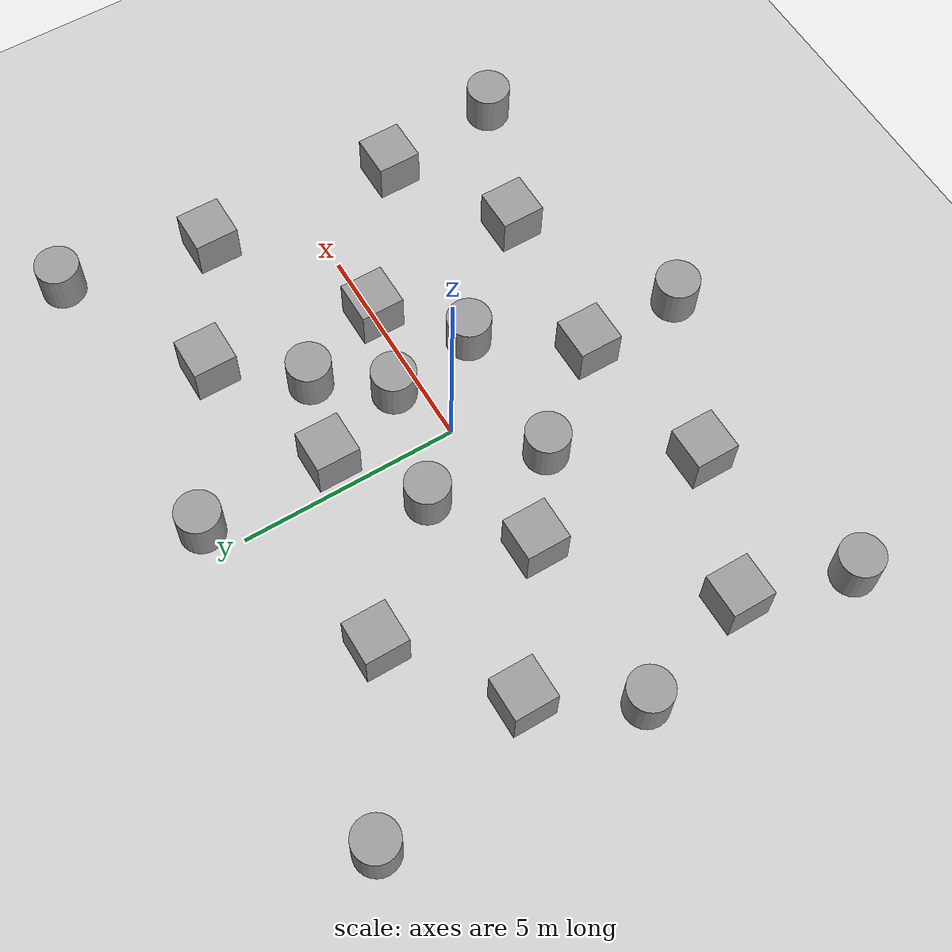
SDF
<sdf version='1.7'>
  <world name='default'>
    <model name='ground_plane'>
      <static>1</static>
      <link name='link'>
        <collision name='collision'>
          <geometry>
            <plane>
              <normal>0 0 1</normal>
              <size>100 100</size>
            </plane>
          </geometry>
          <surface>
            <friction>
              <ode>
                <mu>100</mu>
                <mu2>50</mu2>
              </ode>
              <torsional>
                <ode/>
              </torsional>
            </friction>
            <contact>
              <ode/>
            </contact>
            <bounce/>
          </surface>
          <max_contacts>10</max_contacts>
        </collision>
        <visual name='visual'>
          <cast_shadows>0</cast_shadows>
          <geometry>
            <plane>
              <normal>0 0 1</normal>
              <size>100 100</size>
            </plane>
          </geometry>
          <material>
            <script>
              <uri>file://media/materials/scripts/gazebo.material</uri>
              <name>Gazebo/Grey</name>
            </script>
          </material>
        </visual>
        <self_collide>0</self_collide>
        <enable_wind>0</enable_wind>
        <kinematic>0</kinematic>
      </link>
    </model>
    <light name='sun' type='directional'>
      <cast_shadows>1</cast_shadows>
      <pose>0 0 10 0 -0 0</pose>
      <diffuse>0.8 0.8 0.8 1</diffuse>
      <specular>0.2 0.2 0.2 1</specular>
      <attenuation>
        <range>1000</range>
        <constant>0.9</constant>
        <linear>0.01</linear>
        <quadratic>0.001</quadratic>
      </attenuation>
      <direction>-0.5 0.1 -0.9</direction>
      <spot>
        <inner_angle>0</inner_angle>
        <outer_angle>0</outer_angle>
        <falloff>0</falloff>
      </spot>
    </light>
    <light name='user_point_light_0' type='point'>
      <pose>-0.01172 -0.065236 1 0 -0 0</pose>
      <diffuse>0.5 0.5 0.5 1</diffuse>
      <specular>0.1 0.1 0.1 1</specular>
      <attenuation>
        <range>20</range>
        <constant>0.5</constant>
        <linear>0.01</linear>
        <quadratic>0.001</quadratic>
      </attenuation>
      <cast_shadows>0</cast_shadows>
      <direction>0 0 -1</direction>
      <spot>
        <inner_angle>0</inner_angle>
        <outer_angle>0</outer_angle>
        <falloff>0</falloff>
      </spot>
    </light>
    <scene>
      <shadows>0</shadows>
      <ambient>0.4 0.4 0.4 1</ambient>
      <background>0.7 0.7 0.7 1</background>
    </scene>
    <gui fullscreen='0'>
      <camera name='user_camera'>
        <pose>-0.028607 -0.12935 6.91542 0 1.5138 0.009599</pose>
        <view_controller>orbit</view_controller>
        <projection_type>perspective</projection_type>
      </camera>
    </gui>
    <physics type='ode'>
      <real_time_update_rate>1000</real_time_update_rate>
      <max_step_size>0.001</max_step_size>
      <real_time_factor>1</real_time_factor>
      <ode>
        <solver>
          <type>quick</type>
          <iters>150</iters>
          <precon_iters>0</precon_iters>
          <sor>1.4</sor>
          <use_dynamic_moi_rescaling>1</use_dynamic_moi_rescaling>
        </solver>
        <constraints>
          <cfm>1e-05</cfm>
          <erp>0.2</erp>
          <contact_max_correcting_vel>2000</contact_max_correcting_vel>
          <contact_surface_layer>0.01</contact_surface_layer>
        </constraints>
      </ode>
    </physics>
    <gravity>0 0 -9.8</gravity>
    <magnetic_field>6e-06 2.3e-05 -4.2e-05</magnetic_field>
    <atmosphere type='adiabatic'/>
    <audio>
      <device>default</device>
    </audio>
    <wind/>
    <spherical_coordinates>
      <surface_model>EARTH_WGS84</surface_model>
      <latitude_deg>0</latitude_deg>
      <longitude_deg>0</longitude_deg>
      <elevation>0</elevation>
      <heading_deg>0</heading_deg>
    </spherical_coordinates>
    <model name='unit_box'>
      <static>1</static>
      <pose>3.38666 0.001849 0.5 0 -0 0</pose>
      <link name='link'>
        <collision name='collision'>
          <geometry>
            <box>
              <size>1 1 1</size>
            </box>
          </geometry>
          <max_contacts>10</max_contacts>
          <surface>
            <contact>
              <ode/>
            </contact>
            <bounce/>
            <friction>
              <torsional>
                <ode/>
              </torsional>
              <ode/>
            </friction>
          </surface>
        </collision>
        <visual name='visual'>
          <geometry>
            <box>
              <size>1 1 1</size>
            </box>
          </geometry>
          <material>
            <script>
              <name>Gazebo/Grey</name>
              <uri>file://media/materials/scripts/gazebo.material</uri>
            </script>
          </material>
        </visual>
        <self_collide>0</self_collide>
        <enable_wind>0</enable_wind>
        <kinematic>0</kinematic>
      </link>
    </model>
    <model name='unit_box_0'>
      <static>1</static>
      <pose>0.67697 2.60322 0.5 0 -0 0</pose>
      <link name='link'>
        <collision name='collision'>
          <geometry>
            <box>
              <size>1 1 1</size>
            </box>
          </geometry>
          <max_contacts>10</max_contacts>
          <surface>
            <contact>
              <ode/>
            </contact>
            <bounce/>
            <friction>
              <torsional>
                <ode/>
              </torsional>
              <ode/>
            </friction>
          </surface>
        </collision>
        <visual name='visual'>
          <geometry>
            <box>
              <size>1 1 1</size>
            </box>
          </geometry>
          <material>
            <script>
              <name>Gazebo/Grey</name>
              <uri>file://media/materials/scripts/gazebo.material</uri>
            </script>
          </material>
        </visual>
        <self_collide>0</self_collide>
        <enable_wind>0</enable_wind>
        <kinematic>0</kinematic>
      </link>
    </model>
    <model name='unit_box_1'>
      <static>1</static>
      <pose>-3.22361 -0.084555 0.5 0 -0 0</pose>
      <link name='link'>
        <collision name='collision'>
          <geometry>
            <box>
              <size>1 1 1</size>
            </box>
          </geometry>
          <max_contacts>10</max_contacts>
          <surface>
            <contact>
              <ode/>
            </contact>
            <bounce/>
            <friction>
              <torsional>
                <ode/>
              </torsional>
              <ode/>
            </friction>
          </surface>
        </collision>
        <visual name='visual'>
          <geometry>
            <box>
              <size>1 1 1</size>
            </box>
          </geometry>
          <material>
            <script>
              <name>Gazebo/Grey</name>
              <uri>file://media/materials/scripts/gazebo.material</uri>
            </script>
          </material>
        </visual>
        <self_collide>0</self_collide>
        <enable_wind>0</enable_wind>
        <kinematic>0</kinematic>
      </link>
    </model>
    <model name='unit_box_2'>
      <static>1</static>
      <pose>0.190268 -3.57976 0.5 0 -0 0</pose>
      <link name='link'>
        <collision name='collision'>
          <geometry>
            <box>
              <size>1 1 1</size>
            </box>
          </geometry>
          <max_contacts>10</max_contacts>
          <surface>
            <contact>
              <ode/>
            </contact>
            <bounce/>
            <friction>
              <torsional>
                <ode/>
              </torsional>
              <ode/>
            </friction>
          </surface>
        </collision>
        <visual name='visual'>
          <geometry>
            <box>
              <size>1 1 1</size>
            </box>
          </geometry>
          <material>
            <script>
              <name>Gazebo/Grey</name>
              <uri>file://media/materials/scripts/gazebo.material</uri>
            </script>
          </material>
        </visual>
        <self_collide>0</self_collide>
        <enable_wind>0</enable_wind>
        <kinematic>0</kinematic>
      </link>
    </model>
    <model name='unit_box_3'>
      <static>1</static>
      <pose>3.96673 3.78324 0.5 0 -0 0</pose>
      <link name='link'>
        <collision name='collision'>
          <geometry>
            <box>
              <size>1 1 1</size>
            </box>
          </geometry>
          <max_contacts>10</max_contacts>
          <surface>
            <contact>
              <ode/>
            </contact>
            <bounce/>
            <friction>
              <torsional>
                <ode/>
              </torsional>
              <ode/>
            </friction>
          </surface>
        </collision>
        <visual name='visual'>
          <geometry>
            <box>
              <size>1 1 1</size>
            </box>
          </geometry>
          <material>
            <script>
              <name>Gazebo/Grey</name>
              <uri>file://media/materials/scripts/gazebo.material</uri>
            </script>
          </material>
        </visual>
        <self_collide>0</self_collide>
        <enable_wind>0</enable_wind>
        <kinematic>0</kinematic>
      </link>
    </model>
    <model name='unit_box_4'>
      <static>1</static>
      <pose>3.90566 -3.92218 0.5 0 -0 0</pose>
      <link name='link'>
        <collision name='collision'>
          <geometry>
            <box>
              <size>1 1 1</size>
            </box>
          </geometry>
          <max_contacts>10</max_contacts>
          <surface>
            <contact>
              <ode/>
            </contact>
            <bounce/>
            <friction>
              <torsional>
                <ode/>
              </torsional>
              <ode/>
            </friction>
          </surface>
        </collision>
        <visual name='visual'>
          <geometry>
            <box>
              <size>1 1 1</size>
            </box>
          </geometry>
          <material>
            <script>
              <name>Gazebo/Grey</name>
              <uri>file://media/materials/scripts/gazebo.material</uri>
            </script>
          </material>
        </visual>
        <self_collide>0</self_collide>
        <enable_wind>0</enable_wind>
        <kinematic>0</kinematic>
      </link>
    </model>
    <model name='unit_box_5'>
      <static>1</static>
      <pose>-3.49931 3.82197 0.5 0 -0 0</pose>
      <link name='link'>
        <collision name='collision'>
          <geometry>
            <box>
              <size>1 1 1</size>
            </box>
          </geometry>
          <max_contacts>10</max_contacts>
          <surface>
            <contact>
              <ode/>
            </contact>
            <bounce/>
            <friction>
              <torsional>
                <ode/>
              </torsional>
              <ode/>
            </friction>
          </surface>
        </collision>
        <visual name='visual'>
          <geometry>
            <box>
              <size>1 1 1</size>
            </box>
          </geometry>
          <material>
            <script>
              <name>Gazebo/Grey</name>
              <uri>file://media/materials/scripts/gazebo.material</uri>
            </script>
          </material>
        </visual>
        <self_collide>0</self_collide>
        <enable_wind>0</enable_wind>
        <kinematic>0</kinematic>
      </link>
    </model>
    <model name='unit_box_6'>
      <static>1</static>
      <pose>-3.26445 -4.20284 0.5 0 -0 0</pose>
      <link name='link'>
        <collision name='collision'>
          <geometry>
            <box>
              <size>1 1 1</size>
            </box>
          </geometry>
          <max_contacts>10</max_contacts>
          <surface>
            <contact>
              <ode/>
            </contact>
            <bounce/>
            <friction>
              <torsional>
                <ode/>
              </torsional>
              <ode/>
            </friction>
          </surface>
        </collision>
        <visual name='visual'>
          <geometry>
            <box>
              <size>1 1 1</size>
            </box>
          </geometry>
          <material>
            <script>
              <name>Gazebo/Grey</name>
              <uri>file://media/materials/scripts/gazebo.material</uri>
            </script>
          </material>
        </visual>
        <self_collide>0</self_collide>
        <enable_wind>0</enable_wind>
        <kinematic>0</kinematic>
      </link>
    </model>
    <model name='unit_box_7'>
      <static>1</static>
      <pose>6.63246 -2.28389 0.5 0 -0 0</pose>
      <link name='link'>
        <collision name='collision'>
          <geometry>
            <box>
              <size>1 1 1</size>
            </box>
          </geometry>
          <max_contacts>10</max_contacts>
          <surface>
            <contact>
              <ode/>
            </contact>
            <bounce/>
            <friction>
              <torsional>
                <ode/>
              </torsional>
              <ode/>
            </friction>
          </surface>
        </collision>
        <visual name='visual'>
          <geometry>
            <box>
              <size>1 1 1</size>
            </box>
          </geometry>
          <material>
            <script>
              <name>Gazebo/Grey</name>
              <uri>file://media/materials/scripts/gazebo.material</uri>
            </script>
          </material>
        </visual>
        <self_collide>0</self_collide>
        <enable_wind>0</enable_wind>
        <kinematic>0</kinematic>
      </link>
    </model>
    <model name='unit_box_8'>
      <static>1</static>
      <pose>6.87415 2.26288 0.5 0 -0 0</pose>
      <link name='link'>
        <collision name='collision'>
          <geometry>
            <box>
              <size>1 1 1</size>
            </box>
          </geometry>
          <max_contacts>10</max_contacts>
          <surface>
            <contact>
              <ode/>
            </contact>
            <bounce/>
            <friction>
              <torsional>
                <ode/>
              </torsional>
              <ode/>
            </friction>
          </surface>
        </collision>
        <visual name='visual'>
          <geometry>
            <box>
              <size>1 1 1</size>
            </box>
          </geometry>
          <material>
            <script>
              <name>Gazebo/Grey</name>
              <uri>file://media/materials/scripts/gazebo.material</uri>
            </script>
          </material>
        </visual>
        <self_collide>0</self_collide>
        <enable_wind>0</enable_wind>
        <kinematic>0</kinematic>
      </link>
    </model>
    <model name='unit_box_9'>
      <static>1</static>
      <pose>-5.95784 1.92108 0.5 0 -0 0</pose>
      <link name='link'>
        <collision name='collision'>
          <geometry>
            <box>
              <size>1 1 1</size>
            </box>
          </geometry>
          <max_contacts>10</max_contacts>
          <surface>
            <contact>
              <ode/>
            </contact>
            <bounce/>
            <friction>
              <torsional>
                <ode/>
              </torsional>
              <ode/>
            </friction>
          </surface>
        </collision>
        <visual name='visual'>
          <geometry>
            <box>
              <size>1 1 1</size>
            </box>
          </geometry>
          <material>
            <script>
              <name>Gazebo/Grey</name>
              <uri>file://media/materials/scripts/gazebo.material</uri>
            </script>
          </material>
        </visual>
        <self_collide>0</self_collide>
        <enable_wind>0</enable_wind>
        <kinematic>0</kinematic>
      </link>
    </model>
    <model name='unit_box_10'>
      <static>1</static>
      <pose>-6.34165 -2.92589 0.5 0 -0 0</pose>
      <link name='link'>
        <collision name='collision'>
          <geometry>
            <box>
              <size>1 1 1</size>
            </box>
          </geometry>
          <max_contacts>10</max_contacts>
          <surface>
            <contact>
              <ode/>
            </contact>
            <bounce/>
            <friction>
              <torsional>
                <ode/>
              </torsional>
              <ode/>
            </friction>
          </surface>
        </collision>
        <visual name='visual'>
          <geometry>
            <box>
              <size>1 1 1</size>
            </box>
          </geometry>
          <material>
            <script>
              <name>Gazebo/Grey</name>
              <uri>file://media/materials/scripts/gazebo.material</uri>
            </script>
          </material>
        </visual>
        <self_collide>0</self_collide>
        <enable_wind>0</enable_wind>
        <kinematic>0</kinematic>
      </link>
    </model>
    <model name='unit_cylinder'>
      <static>1</static>
      <pose>6.98704 -5.17615 0.5 0 -0 0</pose>
      <link name='link'>
        <collision name='collision'>
          <geometry>
            <cylinder>
              <radius>0.5</radius>
              <length>1</length>
            </cylinder>
          </geometry>
          <max_contacts>10</max_contacts>
          <surface>
            <contact>
              <ode/>
            </contact>
            <bounce/>
            <friction>
              <torsional>
                <ode/>
              </torsional>
              <ode/>
            </friction>
          </surface>
        </collision>
        <visual name='visual'>
          <geometry>
            <cylinder>
              <radius>0.5</radius>
              <length>1</length>
            </cylinder>
          </geometry>
          <material>
            <script>
              <name>Gazebo/Grey</name>
              <uri>file://media/materials/scripts/gazebo.material</uri>
            </script>
          </material>
        </visual>
        <self_collide>0</self_collide>
        <enable_wind>0</enable_wind>
        <kinematic>0</kinematic>
      </link>
    </model>
    <model name='unit_cylinder_0'>
      <static>1</static>
      <pose>7.57803 5.61746 0.5 0 -0 0</pose>
      <link name='link'>
        <collision name='collision'>
          <geometry>
            <cylinder>
              <radius>0.5</radius>
              <length>1</length>
            </cylinder>
          </geometry>
          <max_contacts>10</max_contacts>
          <surface>
            <contact>
              <ode/>
            </contact>
            <bounce/>
            <friction>
              <torsional>
                <ode/>
              </torsional>
              <ode/>
            </friction>
          </surface>
        </collision>
        <visual name='visual'>
          <geometry>
            <cylinder>
              <radius>0.5</radius>
              <length>1</length>
            </cylinder>
          </geometry>
          <material>
            <script>
              <name>Gazebo/Grey</name>
              <uri>file://media/materials/scripts/gazebo.material</uri>
            </script>
          </material>
        </visual>
        <self_collide>0</self_collide>
        <enable_wind>0</enable_wind>
        <kinematic>0</kinematic>
      </link>
    </model>
    <model name='unit_cylinder_1'>
      <static>1</static>
      <pose>0.616269 5.65718 0.5 0 -0 0</pose>
      <link name='link'>
        <collision name='collision'>
          <geometry>
            <cylinder>
              <radius>0.5</radius>
              <length>1</length>
            </cylinder>
          </geometry>
          <max_contacts>10</max_contacts>
          <surface>
            <contact>
              <ode/>
            </contact>
            <bounce/>
            <friction>
              <torsional>
                <ode/>
              </torsional>
              <ode/>
            </friction>
          </surface>
        </collision>
        <visual name='visual'>
          <geometry>
            <cylinder>
              <radius>0.5</radius>
              <length>1</length>
            </cylinder>
          </geometry>
          <material>
            <script>
              <name>Gazebo/Grey</name>
              <uri>file://media/materials/scripts/gazebo.material</uri>
            </script>
          </material>
        </visual>
        <self_collide>0</self_collide>
        <enable_wind>0</enable_wind>
        <kinematic>0</kinematic>
      </link>
    </model>
    <model name='unit_cylinder_2'>
      <static>1</static>
      <pose>-7.05062 5.83323 0.5 0 -0 0</pose>
      <link name='link'>
        <collision name='collision'>
          <geometry>
            <cylinder>
              <radius>0.5</radius>
              <length>1</length>
            </cylinder>
          </geometry>
          <max_contacts>10</max_contacts>
          <surface>
            <contact>
              <ode/>
            </contact>
            <bounce/>
            <friction>
              <torsional>
                <ode/>
              </torsional>
              <ode/>
            </friction>
          </surface>
        </collision>
        <visual name='visual'>
          <geometry>
            <cylinder>
              <radius>0.5</radius>
              <length>1</length>
            </cylinder>
          </geometry>
          <material>
            <script>
              <name>Gazebo/Grey</name>
              <uri>file://media/materials/scripts/gazebo.material</uri>
            </script>
          </material>
        </visual>
        <self_collide>0</self_collide>
        <enable_wind>0</enable_wind>
        <kinematic>0</kinematic>
      </link>
    </model>
    <model name='unit_cylinder_3'>
      <static>1</static>
      <pose>-7.22685 -0.183545 0.5 0 -0 0</pose>
      <link name='link'>
        <collision name='collision'>
          <geometry>
            <cylinder>
              <radius>0.5</radius>
              <length>1</length>
            </cylinder>
          </geometry>
          <max_contacts>10</max_contacts>
          <surface>
            <contact>
              <ode/>
            </contact>
            <bounce/>
            <friction>
              <torsional>
                <ode/>
              </torsional>
              <ode/>
            </friction>
          </surface>
        </collision>
        <visual name='visual'>
          <geometry>
            <cylinder>
              <radius>0.5</radius>
              <length>1</length>
            </cylinder>
          </geometry>
          <material>
            <script>
              <name>Gazebo/Grey</name>
              <uri>file://media/materials/scripts/gazebo.material</uri>
            </script>
          </material>
        </visual>
        <self_collide>0</self_collide>
        <enable_wind>0</enable_wind>
        <kinematic>0</kinematic>
      </link>
    </model>
    <model name='unit_cylinder_4'>
      <static>1</static>
      <pose>-7.05957 -5.40846 0.5 0 -0 0</pose>
      <link name='link'>
        <collision name='collision'>
          <geometry>
            <cylinder>
              <radius>0.5</radius>
              <length>1</length>
            </cylinder>
          </geometry>
          <max_contacts>10</max_contacts>
          <surface>
            <contact>
              <ode/>
            </contact>
            <bounce/>
            <friction>
              <torsional>
                <ode/>
              </torsional>
              <ode/>
            </friction>
          </surface>
        </collision>
        <visual name='visual'>
          <geometry>
            <cylinder>
              <radius>0.5</radius>
              <length>1</length>
            </cylinder>
          </geometry>
          <material>
            <script>
              <name>Gazebo/Grey</name>
              <uri>file://media/materials/scripts/gazebo.material</uri>
            </script>
          </material>
        </visual>
        <self_collide>0</self_collide>
        <enable_wind>0</enable_wind>
        <kinematic>0</kinematic>
      </link>
    </model>
    <model name='unit_cylinder_5'>
      <static>1</static>
      <pose>0.288242 -5.96782 0.5 0 -0 0</pose>
      <link name='link'>
        <collision name='collision'>
          <geometry>
            <cylinder>
              <radius>0.5</radius>
              <length>1</length>
            </cylinder>
          </geometry>
          <max_contacts>10</max_contacts>
          <surface>
            <contact>
              <ode/>
            </contact>
            <bounce/>
            <friction>
              <torsional>
                <ode/>
              </torsional>
              <ode/>
            </friction>
          </surface>
        </collision>
        <visual name='visual'>
          <geometry>
            <cylinder>
              <radius>0.5</radius>
              <length>1</length>
            </cylinder>
          </geometry>
          <material>
            <script>
              <name>Gazebo/Grey</name>
              <uri>file://media/materials/scripts/gazebo.material</uri>
            </script>
          </material>
        </visual>
        <self_collide>0</self_collide>
        <enable_wind>0</enable_wind>
        <kinematic>0</kinematic>
      </link>
    </model>
    <model name='unit_cylinder_6'>
      <pose>1.7729 -1.50259 0.5 0 -0 0</pose>
      <link name='link'>
        <inertial>
          <mass>1</mass>
          <inertia>
            <ixx>0.145833</ixx>
            <ixy>0</ixy>
            <ixz>0</ixz>
            <iyy>0.145833</iyy>
            <iyz>0</iyz>
            <izz>0.125</izz>
          </inertia>
          <pose>0 0 0 0 -0 0</pose>
        </inertial>
        <collision name='collision'>
          <geometry>
            <cylinder>
              <radius>0.5</radius>
              <length>1</length>
            </cylinder>
          </geometry>
          <max_contacts>10</max_contacts>
          <surface>
            <contact>
              <ode/>
            </contact>
            <bounce/>
            <friction>
              <torsional>
                <ode/>
              </torsional>
              <ode/>
            </friction>
          </surface>
        </collision>
        <visual name='visual'>
          <geometry>
            <cylinder>
              <radius>0.5</radius>
              <length>1</length>
            </cylinder>
          </geometry>
          <material>
            <script>
              <name>Gazebo/Grey</name>
              <uri>file://media/materials/scripts/gazebo.material</uri>
            </script>
          </material>
        </visual>
        <self_collide>0</self_collide>
        <enable_wind>0</enable_wind>
        <kinematic>0</kinematic>
      </link>
    </model>
    <model name='unit_cylinder_7'>
      <pose>2.57533 2.02429 0.5 0 -0 0</pose>
      <link name='link'>
        <inertial>
          <mass>1</mass>
          <inertia>
            <ixx>0.145833</ixx>
            <ixy>0</ixy>
            <ixz>0</ixz>
            <iyy>0.145833</iyy>
            <iyz>0</iyz>
            <izz>0.125</izz>
          </inertia>
          <pose>0 0 0 0 -0 0</pose>
        </inertial>
        <collision name='collision'>
          <geometry>
            <cylinder>
              <radius>0.5</radius>
              <length>1</length>
            </cylinder>
          </geometry>
          <max_contacts>10</max_contacts>
          <surface>
            <contact>
              <ode/>
            </contact>
            <bounce/>
            <friction>
              <torsional>
                <ode/>
              </torsional>
              <ode/>
            </friction>
          </surface>
        </collision>
        <visual name='visual'>
          <geometry>
            <cylinder>
              <radius>0.5</radius>
              <length>1</length>
            </cylinder>
          </geometry>
          <material>
            <script>
              <name>Gazebo/Grey</name>
              <uri>file://media/materials/scripts/gazebo.material</uri>
            </script>
          </material>
        </visual>
        <self_collide>0</self_collide>
        <enable_wind>0</enable_wind>
        <kinematic>0</kinematic>
      </link>
    </model>
    <model name='unit_cylinder_8'>
      <pose>-1.47733 -1.47532 0.5 0 -0 0</pose>
      <link name='link'>
        <inertial>
          <mass>1</mass>
          <inertia>
            <ixx>0.145833</ixx>
            <ixy>0</ixy>
            <ixz>0</ixz>
            <iyy>0.145833</iyy>
            <iyz>0</iyz>
            <izz>0.125</izz>
          </inertia>
          <pose>0 0 0 0 -0 0</pose>
        </inertial>
        <collision name='collision'>
          <geometry>
            <cylinder>
              <radius>0.5</radius>
              <length>1</length>
            </cylinder>
          </geometry>
          <max_contacts>10</max_contacts>
          <surface>
            <contact>
              <ode/>
            </contact>
            <bounce/>
            <friction>
              <torsional>
                <ode/>
              </torsional>
              <ode/>
            </friction>
          </surface>
        </collision>
        <visual name='visual'>
          <geometry>
            <cylinder>
              <radius>0.5</radius>
              <length>1</length>
            </cylinder>
          </geometry>
          <material>
            <script>
              <name>Gazebo/Grey</name>
              <uri>file://media/materials/scripts/gazebo.material</uri>
            </script>
          </material>
        </visual>
        <self_collide>0</self_collide>
        <enable_wind>0</enable_wind>
        <kinematic>0</kinematic>
      </link>
    </model>
    <model name='unit_cylinder_9'>
      <pose>-1.20615 1.2915 0.5 0 -0 0</pose>
      <link name='link'>
        <inertial>
          <mass>1</mass>
          <inertia>
            <ixx>0.145833</ixx>
            <ixy>0</ixy>
            <ixz>0</ixz>
            <iyy>0.145833</iyy>
            <iyz>0</iyz>
            <izz>0.125</izz>
          </inertia>
          <pose>0 0 0 0 -0 0</pose>
        </inertial>
        <collision name='collision'>
          <geometry>
            <cylinder>
              <radius>0.5</radius>
              <length>1</length>
            </cylinder>
          </geometry>
          <max_contacts>10</max_contacts>
          <surface>
            <contact>
              <ode/>
            </contact>
            <bounce/>
            <friction>
              <torsional>
                <ode/>
              </torsional>
              <ode/>
            </friction>
          </surface>
        </collision>
        <visual name='visual'>
          <geometry>
            <cylinder>
              <radius>0.5</radius>
              <length>1</length>
            </cylinder>
          </geometry>
          <material>
            <script>
              <name>Gazebo/Grey</name>
              <uri>file://media/materials/scripts/gazebo.material</uri>
            </script>
          </material>
        </visual>
        <self_collide>0</self_collide>
        <enable_wind>0</enable_wind>
        <kinematic>0</kinematic>
      </link>
    </model>
    <model name='unit_cylinder_10'>
      <pose>1.44599 0.575239 0.5 0 -0 0</pose>
      <link name='link'>
        <inertial>
          <mass>1</mass>
          <inertia>
            <ixx>0.145833</ixx>
            <ixy>0</ixy>
            <ixz>0</ixz>
            <iyy>0.145833</iyy>
            <iyz>0</iyz>
            <izz>0.125</izz>
          </inertia>
          <pose>0 0 0 0 -0 0</pose>
        </inertial>
        <collision name='collision'>
          <geometry>
            <cylinder>
              <radius>0.5</radius>
              <length>1</length>
            </cylinder>
          </geometry>
          <max_contacts>10</max_contacts>
          <surface>
            <contact>
              <ode/>
            </contact>
            <bounce/>
            <friction>
              <torsional>
                <ode/>
              </torsional>
              <ode/>
            </friction>
          </surface>
        </collision>
        <visual name='visual'>
          <geometry>
            <cylinder>
              <radius>0.5</radius>
              <length>1</length>
            </cylinder>
          </geometry>
          <material>
            <script>
              <name>Gazebo/Grey</name>
              <uri>file://media/materials/scripts/gazebo.material</uri>
            </script>
          </material>
        </visual>
        <self_collide>0</self_collide>
        <enable_wind>0</enable_wind>
        <kinematic>0</kinematic>
      </link>
    </model>

  </world>
</sdf>
